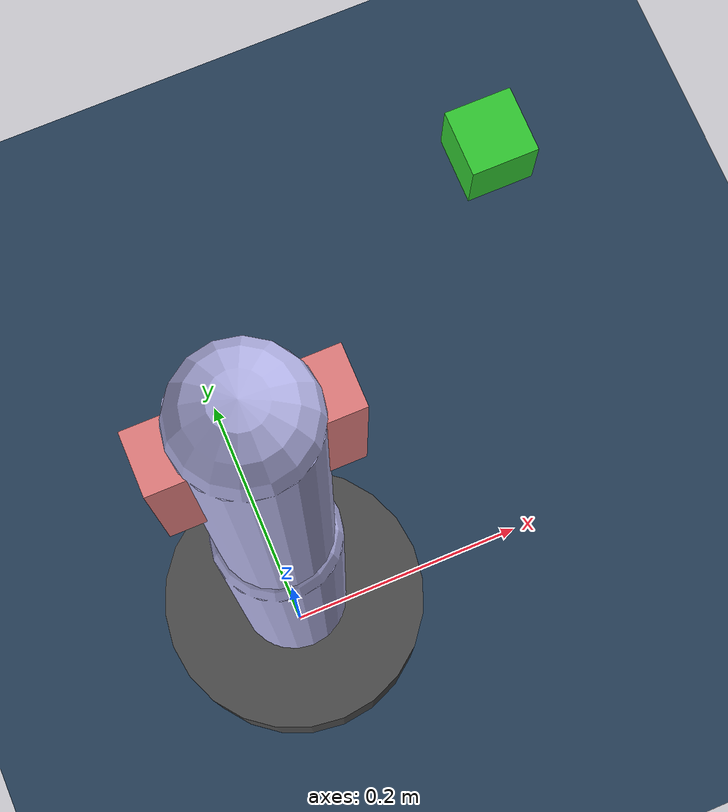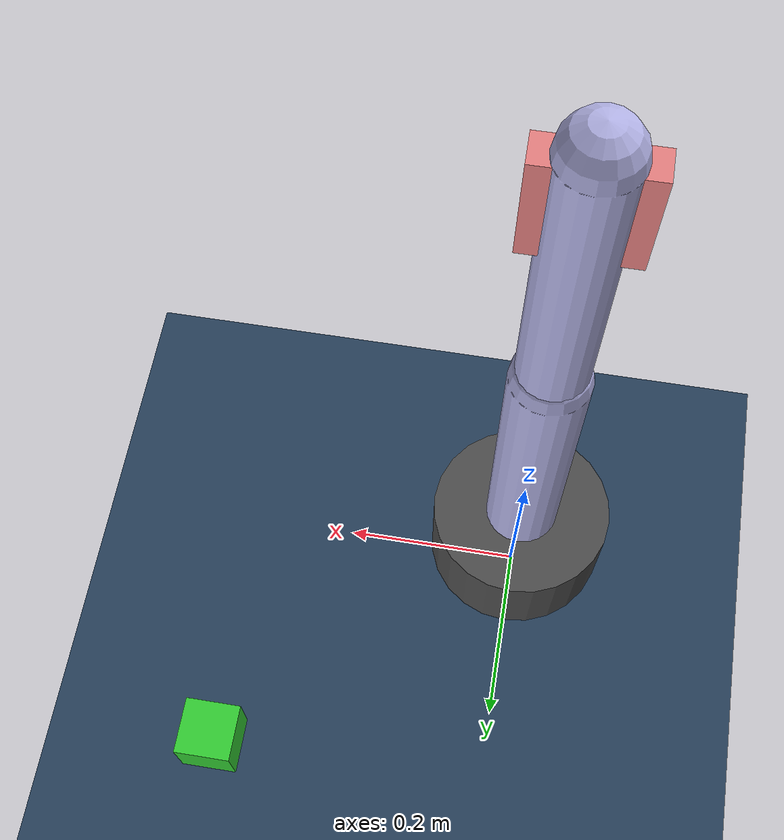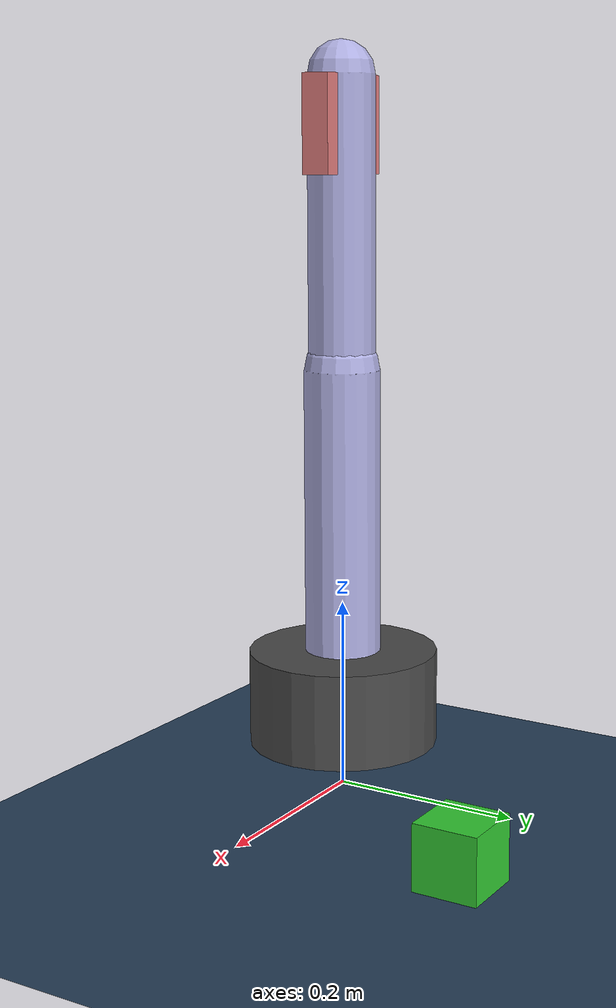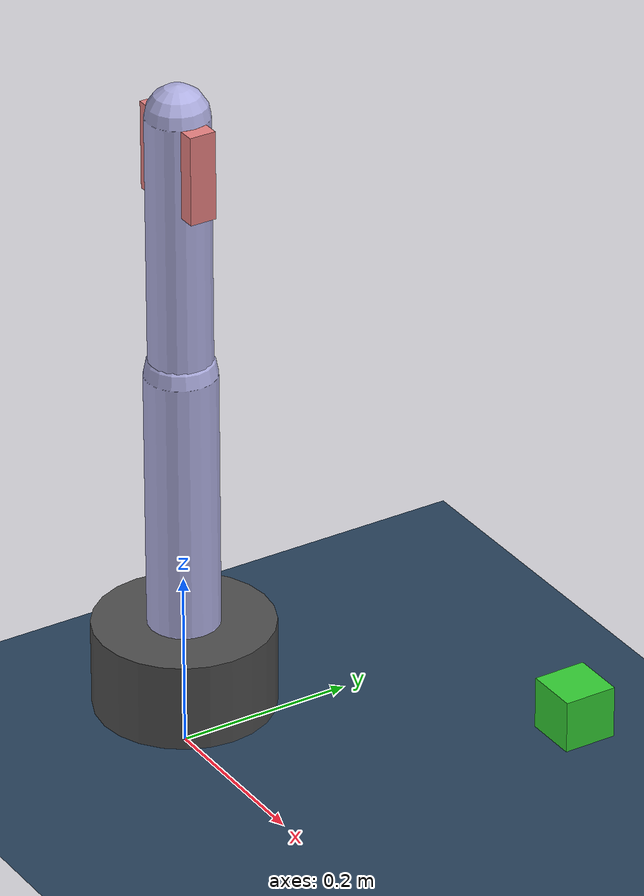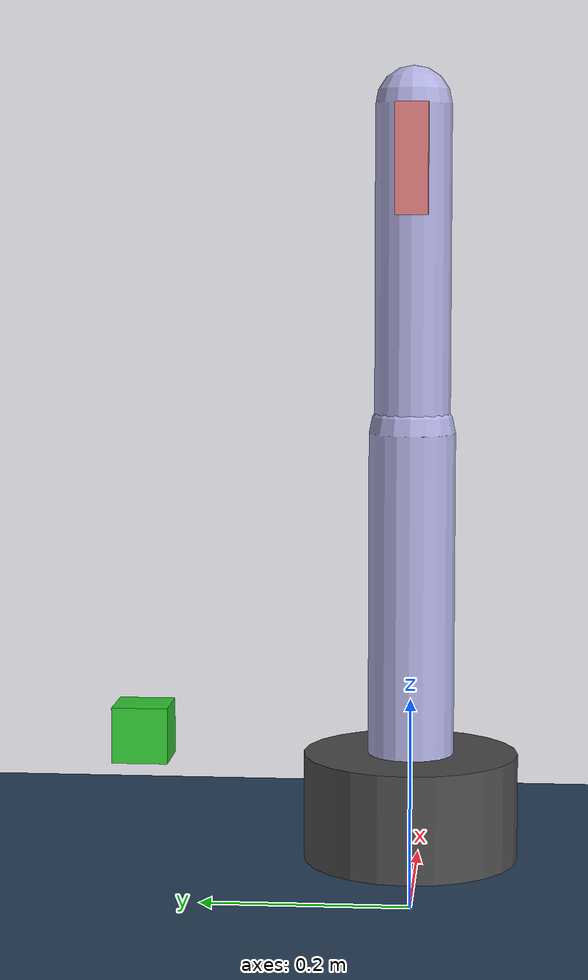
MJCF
<mujoco model="robot_arm">
  <compiler angle="degree" coordinate="local"/>

  <option timestep="0.002" gravity="0 0 -9.81"/>

  <visual>
    <global offwidth="1280" offheight="720"/>
    <quality shadowsize="4096"/>
  </visual>

  <asset>
    <texture name="grid" type="2d" builtin="checker" width="512" height="512"
             rgb1=".1 .2 .3" rgb2=".2 .3 .4"/>
    <material name="grid" texture="grid" texrepeat="1 1" texuniform="true"
              reflectance=".2"/>
    <material name="arm_material" rgba="0.7 0.7 0.9 1"/>
    <material name="gripper_material" rgba="0.9 0.5 0.5 1"/>
  </asset>

  <worldbody>
    <light pos="0 0 3" dir="0 0 -1" diffuse="1 1 1"/>
    <geom name="floor" type="plane" size="2 2 0.1" material="grid"/>

    <!-- Base -->
    <body name="base" pos="0 0 0.1">
      <geom name="base" type="cylinder" size="0.1 0.05" rgba="0.3 0.3 0.3 1"/>

      <!-- Shoulder joint -->
      <body name="link1" pos="0 0 0.05">
        <joint name="shoulder" type="hinge" axis="0 0 1" range="-180 180" damping="1"/>
        <geom name="link1" type="capsule" fromto="0 0 0 0 0 0.3" size="0.04" material="arm_material"/>

        <!-- Elbow joint -->
        <body name="link2" pos="0 0 0.3">
          <joint name="elbow" type="hinge" axis="0 1 0" range="-150 150" damping="1"/>
          <geom name="link2" type="capsule" fromto="0 0 0 0 0 0.3" size="0.035" material="arm_material"/>

          <!-- End effector -->
          <body name="end_effector" pos="0 0 0.3">
            <geom name="ee_sphere" type="sphere" size="0.03" rgba="1 0.2 0.2 1"/>

            <!-- Simple gripper fingers -->
            <body name="finger_left" pos="0.03 0 0">
              <joint name="gripper_left" type="slide" axis="1 0 0" range="0 0.04" damping="0.1"/>
              <geom name="finger_left" type="box" size="0.01 0.015 0.05"
                    material="gripper_material" pos="0.01 0 -0.05"/>
            </body>

            <body name="finger_right" pos="-0.03 0 0">
              <joint name="gripper_right" type="slide" axis="-1 0 0" range="0 0.04" damping="0.1"/>
              <geom name="finger_right" type="box" size="0.01 0.015 0.05"
                    material="gripper_material" pos="-0.01 0 -0.05"/>
            </body>
          </body>
        </body>
      </body>
    </body>

    <!-- Target object to manipulate -->
    <body name="target" pos="0.3 0.3 0.1">
      <joint name="target_free" type="free"/>
      <geom name="target" type="box" size="0.03 0.03 0.03" rgba="0.2 0.8 0.2 1" mass="0.1"/>
    </body>
  </worldbody>

  <actuator>
    <motor name="shoulder_motor" joint="shoulder" gear="20" ctrllimited="true" ctrlrange="-10 10"/>
    <motor name="elbow_motor" joint="elbow" gear="15" ctrllimited="true" ctrlrange="-10 10"/>
    <motor name="gripper_left_motor" joint="gripper_left" gear="5" ctrllimited="true" ctrlrange="-2 2"/>
    <motor name="gripper_right_motor" joint="gripper_right" gear="5" ctrllimited="true" ctrlrange="-2 2"/>
  </actuator>

  <sensor>
    <jointpos name="shoulder_pos" joint="shoulder"/>
    <jointpos name="elbow_pos" joint="elbow"/>
    <jointvel name="shoulder_vel" joint="shoulder"/>
    <jointvel name="elbow_vel" joint="elbow"/>
  </sensor>
</mujoco>
